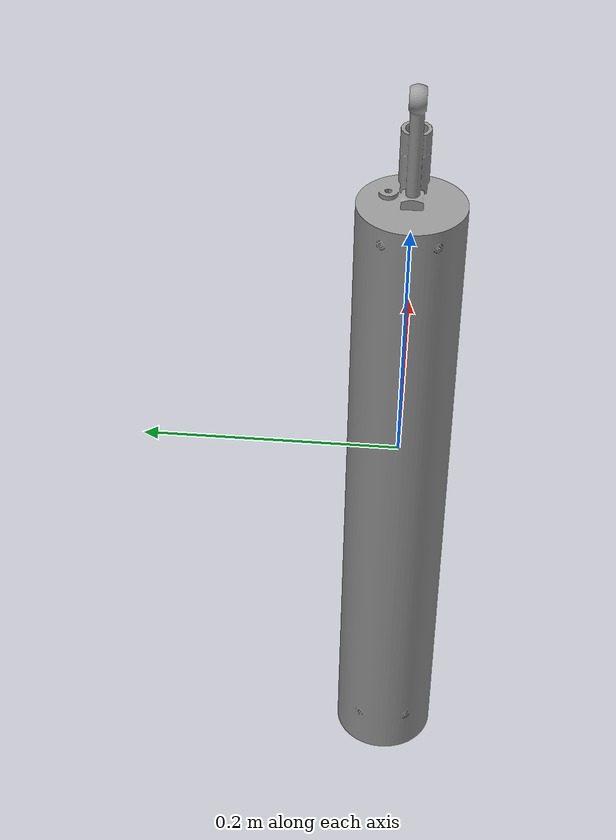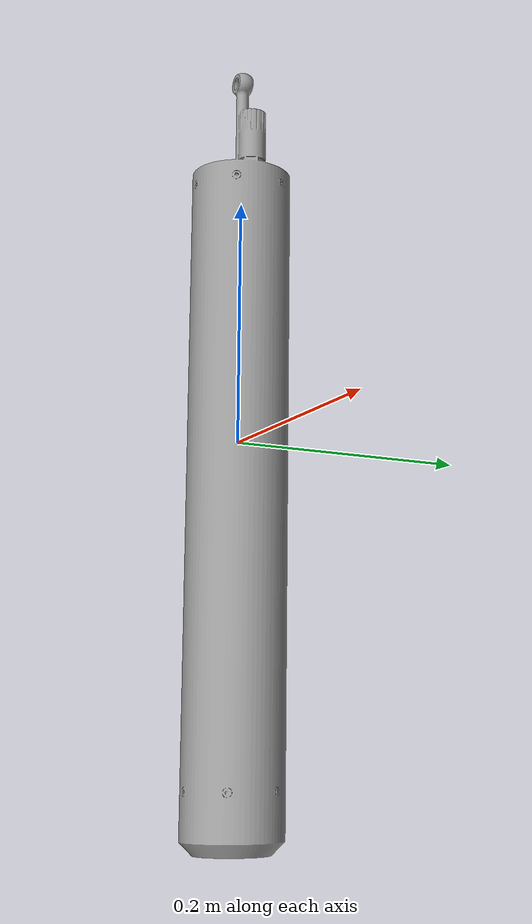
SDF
<?xml version='1.0'?>
<sdf version='1.5'>
  <model name='apu-model'>
    <link name='link'>
      <gravity>0</gravity>
      <inertial>
        <mass>1</mass>
        <pose frame=''>0 0 0 0 -0 0</pose>
        <inertia>
          <ixx>1</ixx>
          <ixy>0</ixy>
          <ixz>0</ixz>
          <iyy>1</iyy>
          <iyz>0</iyz>
          <izz>1</izz>
        </inertia>
      </inertial>

      <visual name='visual'>
        <geometry>
          <mesh>
            <uri>model://apu-model/meshes/apu.stl</uri>
            <scale>1 1 1</scale>
          </mesh>
        </geometry>
        <material>
          <lighting>1</lighting>
          <script>
            <uri>file://media/materials/scripts/gazebo.material</uri>
            <name>Gazebo/Grey</name>
          </script>
          <shader type='pixel'>
            <normal_map>__default__</normal_map>
          </shader>
          <ambient>0.3 0.3 0.3 1</ambient>
          <diffuse>0.7 0.7 0.7 1</diffuse>
          <specular>0.01 0.01 0.01 1</specular>
          <emissive>0 0 0 1</emissive>
        </material>
        <cast_shadows>1</cast_shadows>
        <transparency>0.0</transparency>

      </visual>

      <visual name='visual2'>
        <geometry>
          <mesh>
            <uri>model://apu-model/meshes/apu.stl</uri>
            <scale>1 1 1</scale>
          </mesh>
        </geometry>
        <material>
          <lighting>1</lighting>
          <script>
            <uri>file://media/materials/scripts/gazebo.material</uri>
            <name>Gazebo/Grey</name>
          </script>
          <shader type='pixel'>
            <normal_map>__default__</normal_map>
          </shader>
          <ambient>0.6 0.3 0.3 1</ambient>
          <diffuse>0.9 0.7 0.7 1</diffuse>
          <specular>0.01 0.01 0.01 1</specular>
          <emissive>0 0 0 1</emissive>
        </material>
        <cast_shadows>1</cast_shadows>
        <transparency>1.0</transparency>
      </visual>

      <collision name='collision'>
        <geometry>
            <cylinder>
              <radius>0.05</radius>
              <length>0.7</length>
            </cylinder>
        </geometry>
      </collision>

      <sensor name="laser" type="ray">
       <pose>0 0 0 0 0 0</pose>
        <ray>
          <scan>
            <horizontal>
	<samples>10</samples>
              <resolution>1</resolution>
              <min_angle>0</min_angle>
              <max_angle>0</max_angle>
            </horizontal>
          </scan>
          <range>
	    <min>0.06</min>
            <max>70</max>
            <resolution>0.01</resolution>
          </range>
        </ray>
        <plugin name="laser" filename="libRayPlugin.so" />
        <always_on>1</always_on>
        <update_rate>30</update_rate>
        <visualize>true</visualize>
      </sensor>
    </link>
    <static>0</static>
    <allow_auto_disable>1</allow_auto_disable>
  <plugin name="PositionPlugin" filename="libPositionPlugin.so"/>
  <!--plugin name="setPosition" filename="libsetPosition.so"/-->
</model>
</sdf>
